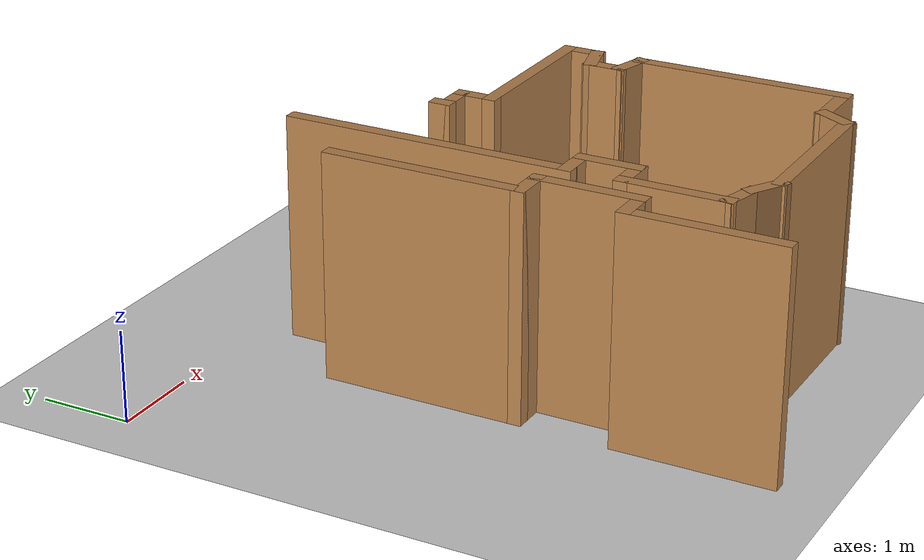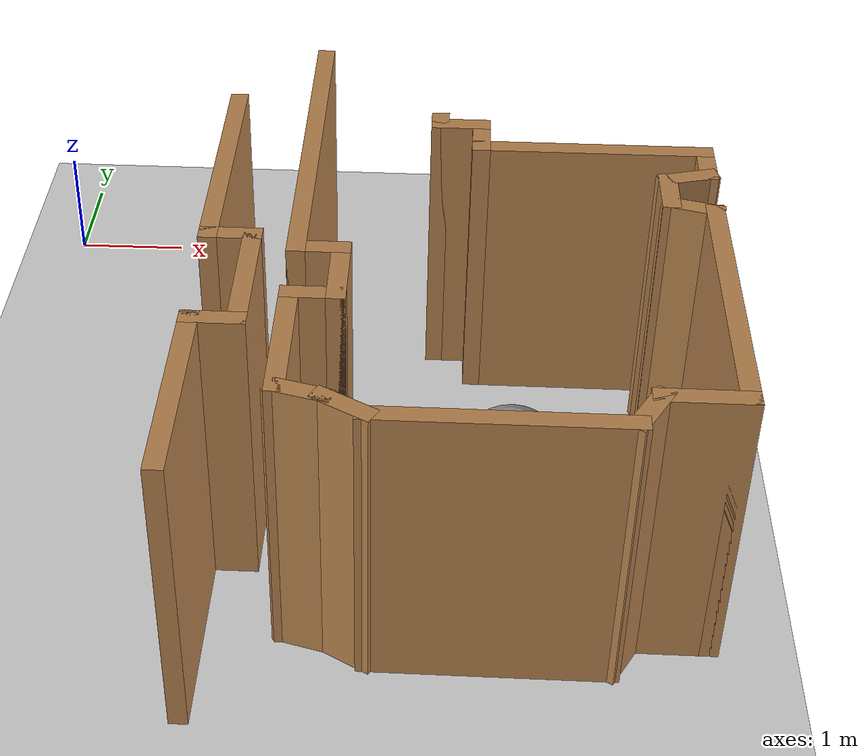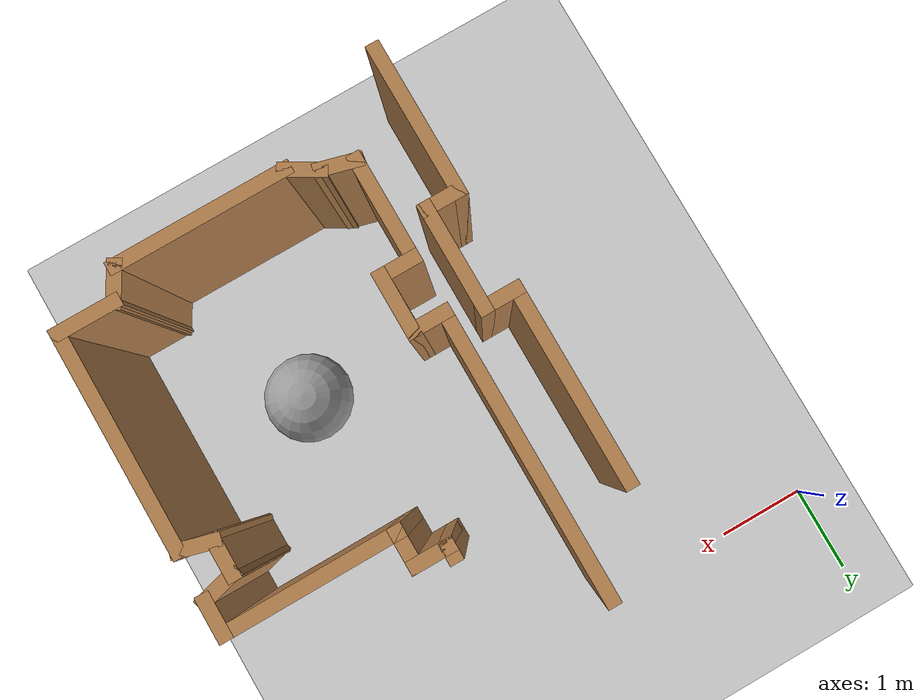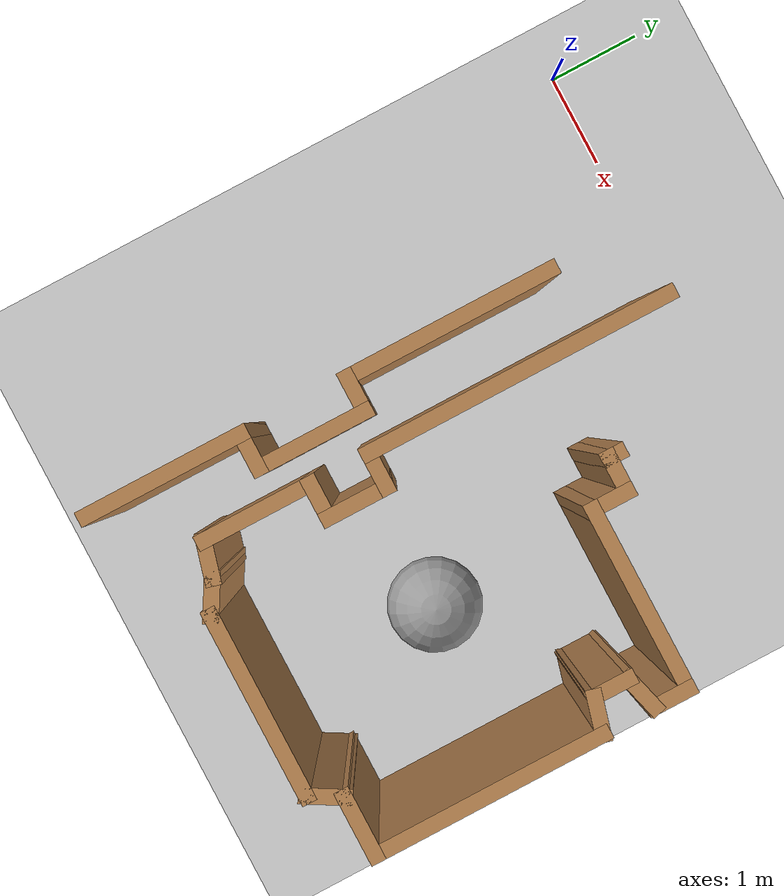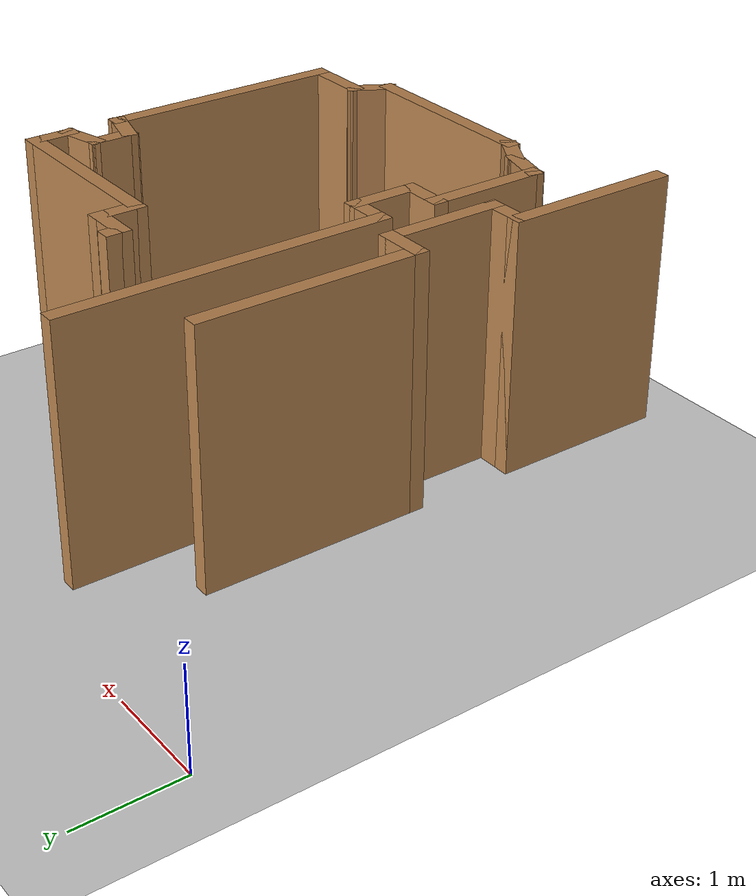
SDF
<sdf version="1.6">
 <world name="default">
  <model name="ground_plane">
   <static>1</static>
   <link name="link">
    <collision name="collision">
     <geometry><plane><normal>0 0 1</normal><size>100 100</size></plane></geometry>
     <surface><friction><ode><mu>100</mu><mu2>50</mu2></ode></friction></surface>
    </collision>
    <visual name="visual">
     <cast_shadows>0</cast_shadows>
     <geometry><plane><normal>0 0 1</normal><size>100 100</size></plane></geometry>
     <material>
      <script><uri>file://media/materials/scripts/gazebo.material</uri><name>Gazebo/Grey</name></script>
     </material>
    </visual>
   </link>
  </model>
  <model name="map_30">
   <link name="Wall_100">
    <pose>3.86655 -1.14749 0 0 -0 1.5708</pose>
    <visual name="Wall_100_Visual">
     <pose>0 0 1.25 0 -0 0</pose>
     <geometry><box><size>0.25 0.15 2.5</size></box></geometry>
     <material>
      <script><uri>file://media/materials/scripts/gazebo.material</uri><name>Gazebo/Wood</name></script>
      <ambient>1 1 1 1</ambient>
      <shader type="pixel"/>
     </material>
     <meta><layer>0</layer></meta>
    </visual>
    <collision name="Wall_100_Collision">
     <pose>0 0 1.25 0 -0 0</pose>
     <geometry><box><size>0.25 0.15 2.5</size></box></geometry>
     <surface>
      <friction>
       <ode><mu>1</mu><mu2>1</mu2><fdir1>0 0 0</fdir1><slip1>0</slip1><slip2>0</slip2></ode>
       <torsional>
        <coefficient>1</coefficient>
        <patch_radius>0</patch_radius>
        <surface_radius>0</surface_radius>
        <use_patch_radius>1</use_patch_radius>
        <ode><slip>0</slip></ode>
       </torsional>
      </friction>
      <bounce><restitution_coefficient>0</restitution_coefficient><threshold>1e+06</threshold></bounce>
      <contact>
       <collide_without_contact>0</collide_without_contact>
       <collide_without_contact_bitmask>1</collide_without_contact_bitmask>
       <collide_bitmask>1</collide_bitmask>
       <ode>
        <soft_cfm>0</soft_cfm>
        <soft_erp>0.2</soft_erp>
        <kp>1e+13</kp>
        <kd>1</kd>
        <max_vel>0.01</max_vel>
        <min_depth>0</min_depth>
       </ode>
       <bullet>
        <split_impulse>1</split_impulse>
        <split_impulse_penetration_threshold>-0.01</split_impulse_penetration_threshold>
        <soft_cfm>0</soft_cfm>
        <soft_erp>0.2</soft_erp>
        <kp>1e+13</kp>
        <kd>1</kd>
       </bullet>
      </contact>
     </surface>
    </collision>
   </link>
   <link name="Wall_68">
    <pose>2.10037 -4.86618 0 0 -0 1.5708</pose>
    <visual name="Wall_68_Visual">
     <pose>0 0 1.25 0 -0 0</pose>
     <geometry><box><size>1.75 0.15 2.5</size></box></geometry>
     <material>
      <script><uri>file://media/materials/scripts/gazebo.material</uri><name>Gazebo/Wood</name></script>
      <ambient>1 1 1 1</ambient>
      <shader type="pixel"/>
     </material>
     <meta><layer>0</layer></meta>
    </visual>
    <collision name="Wall_68_Collision">
     <pose>0 0 1.25 0 -0 0</pose>
     <geometry><box><size>1.75 0.15 2.5</size></box></geometry>
     <surface>
      <friction>
       <ode><mu>1</mu><mu2>1</mu2><fdir1>0 0 0</fdir1><slip1>0</slip1><slip2>0</slip2></ode>
       <torsional>
        <coefficient>1</coefficient>
        <patch_radius>0</patch_radius>
        <surface_radius>0</surface_radius>
        <use_patch_radius>1</use_patch_radius>
        <ode><slip>0</slip></ode>
       </torsional>
      </friction>
      <bounce><restitution_coefficient>0</restitution_coefficient><threshold>1e+06</threshold></bounce>
      <contact>
       <collide_without_contact>0</collide_without_contact>
       <collide_without_contact_bitmask>1</collide_without_contact_bitmask>
       <collide_bitmask>1</collide_bitmask>
       <ode>
        <soft_cfm>0</soft_cfm>
        <soft_erp>0.2</soft_erp>
        <kp>1e+13</kp>
        <kd>1</kd>
        <max_vel>0.01</max_vel>
        <min_depth>0</min_depth>
       </ode>
       <bullet>
        <split_impulse>1</split_impulse>
        <split_impulse_penetration_threshold>-0.01</split_impulse_penetration_threshold>
        <soft_cfm>0</soft_cfm>
        <soft_erp>0.2</soft_erp>
        <kp>1e+13</kp>
        <kd>1</kd>
       </bullet>
      </contact>
     </surface>
    </collision>
   </link>
   <link name="Wall_69">
    <pose>2.27537 -4.06618 0 0 -0 0</pose>
    <visual name="Wall_69_Visual">
     <pose>0 0 1.25 0 -0 0</pose>
     <geometry><box><size>0.5 0.15 2.5</size></box></geometry>
     <material>
      <script><uri>file://media/materials/scripts/gazebo.material</uri><name>Gazebo/Wood</name></script>
      <ambient>1 1 1 1</ambient>
      <shader type="pixel"/>
     </material>
     <meta><layer>0</layer></meta>
    </visual>
    <collision name="Wall_69_Collision">
     <pose>0 0 1.25 0 -0 0</pose>
     <geometry><box><size>0.5 0.15 2.5</size></box></geometry>
     <surface>
      <friction>
       <ode><mu>1</mu><mu2>1</mu2><fdir1>0 0 0</fdir1><slip1>0</slip1><slip2>0</slip2></ode>
       <torsional>
        <coefficient>1</coefficient>
        <patch_radius>0</patch_radius>
        <surface_radius>0</surface_radius>
        <use_patch_radius>1</use_patch_radius>
        <ode><slip>0</slip></ode>
       </torsional>
      </friction>
      <bounce><restitution_coefficient>0</restitution_coefficient><threshold>1e+06</threshold></bounce>
      <contact>
       <collide_without_contact>0</collide_without_contact>
       <collide_without_contact_bitmask>1</collide_without_contact_bitmask>
       <collide_bitmask>1</collide_bitmask>
       <ode>
        <soft_cfm>0</soft_cfm>
        <soft_erp>0.2</soft_erp>
        <kp>1e+13</kp>
        <kd>1</kd>
        <max_vel>0.01</max_vel>
        <min_depth>0</min_depth>
       </ode>
       <bullet>
        <split_impulse>1</split_impulse>
        <split_impulse_penetration_threshold>-0.01</split_impulse_penetration_threshold>
        <soft_cfm>0</soft_cfm>
        <soft_erp>0.2</soft_erp>
        <kp>1e+13</kp>
        <kd>1</kd>
       </bullet>
      </contact>
     </surface>
    </collision>
   </link>
   <link name="Wall_70">
    <pose>2.45037 -3.51618 0 0 -0 1.5708</pose>
    <visual name="Wall_70_Visual">
     <pose>0 0 1.25 0 -0 0</pose>
     <geometry><box><size>1.25 0.15 2.5</size></box></geometry>
     <material>
      <script><uri>file://media/materials/scripts/gazebo.material</uri><name>Gazebo/Wood</name></script>
      <ambient>1 1 1 1</ambient>
      <shader type="pixel"/>
     </material>
     <meta><layer>0</layer></meta>
    </visual>
    <collision name="Wall_70_Collision">
     <pose>0 0 1.25 0 -0 0</pose>
     <geometry><box><size>1.25 0.15 2.5</size></box></geometry>
     <surface>
      <friction>
       <ode><mu>1</mu><mu2>1</mu2><fdir1>0 0 0</fdir1><slip1>0</slip1><slip2>0</slip2></ode>
       <torsional>
        <coefficient>1</coefficient>
        <patch_radius>0</patch_radius>
        <surface_radius>0</surface_radius>
        <use_patch_radius>1</use_patch_radius>
        <ode><slip>0</slip></ode>
       </torsional>
      </friction>
      <bounce><restitution_coefficient>0</restitution_coefficient><threshold>1e+06</threshold></bounce>
      <contact>
       <collide_without_contact>0</collide_without_contact>
       <collide_without_contact_bitmask>1</collide_without_contact_bitmask>
       <collide_bitmask>1</collide_bitmask>
       <ode>
        <soft_cfm>0</soft_cfm>
        <soft_erp>0.2</soft_erp>
        <kp>1e+13</kp>
        <kd>1</kd>
        <max_vel>0.01</max_vel>
        <min_depth>0</min_depth>
       </ode>
       <bullet>
        <split_impulse>1</split_impulse>
        <split_impulse_penetration_threshold>-0.01</split_impulse_penetration_threshold>
        <soft_cfm>0</soft_cfm>
        <soft_erp>0.2</soft_erp>
        <kp>1e+13</kp>
        <kd>1</kd>
       </bullet>
      </contact>
     </surface>
    </collision>
   </link>
   <link name="Wall_71">
    <pose>2.27537 -2.96618 0 0 -0 3.14159</pose>
    <visual name="Wall_71_Visual">
     <pose>0 0 1.25 0 -0 0</pose>
     <geometry><box><size>0.5 0.15 2.5</size></box></geometry>
     <material>
      <script><uri>file://media/materials/scripts/gazebo.material</uri><name>Gazebo/Wood</name></script>
      <ambient>1 1 1 1</ambient>
      <shader type="pixel"/>
     </material>
     <meta><layer>0</layer></meta>
    </visual>
    <collision name="Wall_71_Collision">
     <pose>0 0 1.25 0 -0 0</pose>
     <geometry><box><size>0.5 0.15 2.5</size></box></geometry>
     <surface>
      <friction>
       <ode><mu>1</mu><mu2>1</mu2><fdir1>0 0 0</fdir1><slip1>0</slip1><slip2>0</slip2></ode>
       <torsional>
        <coefficient>1</coefficient>
        <patch_radius>0</patch_radius>
        <surface_radius>0</surface_radius>
        <use_patch_radius>1</use_patch_radius>
        <ode><slip>0</slip></ode>
       </torsional>
      </friction>
      <bounce><restitution_coefficient>0</restitution_coefficient><threshold>1e+06</threshold></bounce>
      <contact>
       <collide_without_contact>0</collide_without_contact>
       <collide_without_contact_bitmask>1</collide_without_contact_bitmask>
       <collide_bitmask>1</collide_bitmask>
       <ode>
        <soft_cfm>0</soft_cfm>
        <soft_erp>0.2</soft_erp>
        <kp>1e+13</kp>
        <kd>1</kd>
        <max_vel>0.01</max_vel>
        <min_depth>0</min_depth>
       </ode>
       <bullet>
        <split_impulse>1</split_impulse>
        <split_impulse_penetration_threshold>-0.01</split_impulse_penetration_threshold>
        <soft_cfm>0</soft_cfm>
        <soft_erp>0.2</soft_erp>
        <kp>1e+13</kp>
        <kd>1</kd>
       </bullet>
      </contact>
     </surface>
    </collision>
   </link>
   <link name="Wall_72">
    <pose>2.10037 -1.91618 0 0 -0 1.5708</pose>
    <visual name="Wall_72_Visual">
     <pose>0 0 1.25 0 -0 0</pose>
     <geometry><box><size>2.25 0.15 2.5</size></box></geometry>
     <material>
      <script><uri>file://media/materials/scripts/gazebo.material</uri><name>Gazebo/Wood</name></script>
      <ambient>1 1 1 1</ambient>
      <shader type="pixel"/>
     </material>
     <meta><layer>0</layer></meta>
    </visual>
    <collision name="Wall_72_Collision">
     <pose>0 0 1.25 0 -0 0</pose>
     <geometry><box><size>2.25 0.15 2.5</size></box></geometry>
     <surface>
      <friction>
       <ode><mu>1</mu><mu2>1</mu2><fdir1>0 0 0</fdir1><slip1>0</slip1><slip2>0</slip2></ode>
       <torsional>
        <coefficient>1</coefficient>
        <patch_radius>0</patch_radius>
        <surface_radius>0</surface_radius>
        <use_patch_radius>1</use_patch_radius>
        <ode><slip>0</slip></ode>
       </torsional>
      </friction>
      <bounce><restitution_coefficient>0</restitution_coefficient><threshold>1e+06</threshold></bounce>
      <contact>
       <collide_without_contact>0</collide_without_contact>
       <collide_without_contact_bitmask>1</collide_without_contact_bitmask>
       <collide_bitmask>1</collide_bitmask>
       <ode>
        <soft_cfm>0</soft_cfm>
        <soft_erp>0.2</soft_erp>
        <kp>1e+13</kp>
        <kd>1</kd>
        <max_vel>0.01</max_vel>
        <min_depth>0</min_depth>
       </ode>
       <bullet>
        <split_impulse>1</split_impulse>
        <split_impulse_penetration_threshold>-0.01</split_impulse_penetration_threshold>
        <soft_cfm>0</soft_cfm>
        <soft_erp>0.2</soft_erp>
        <kp>1e+13</kp>
        <kd>1</kd>
       </bullet>
      </contact>
     </surface>
    </collision>
   </link>
   <link name="Wall_76">
    <pose>2.80037 -1.56618 0 0 0 -1.5708</pose>
    <visual name="Wall_76_Visual">
     <pose>0 0 1.25 0 -0 0</pose>
     <geometry><box><size>3.25 0.15 2.5</size></box></geometry>
     <material>
      <script><uri>file://media/materials/scripts/gazebo.material</uri><name>Gazebo/Wood</name></script>
      <ambient>1 1 1 1</ambient>
      <shader type="pixel"/>
     </material>
     <meta><layer>0</layer></meta>
    </visual>
    <collision name="Wall_76_Collision">
     <pose>0 0 1.25 0 -0 0</pose>
     <geometry><box><size>3.25 0.15 2.5</size></box></geometry>
     <surface>
      <friction>
       <ode><mu>1</mu><mu2>1</mu2><fdir1>0 0 0</fdir1><slip1>0</slip1><slip2>0</slip2></ode>
       <torsional>
        <coefficient>1</coefficient>
        <patch_radius>0</patch_radius>
        <surface_radius>0</surface_radius>
        <use_patch_radius>1</use_patch_radius>
        <ode><slip>0</slip></ode>
       </torsional>
      </friction>
      <bounce><restitution_coefficient>0</restitution_coefficient><threshold>1e+06</threshold></bounce>
      <contact>
       <collide_without_contact>0</collide_without_contact>
       <collide_without_contact_bitmask>1</collide_without_contact_bitmask>
       <collide_bitmask>1</collide_bitmask>
       <ode>
        <soft_cfm>0</soft_cfm>
        <soft_erp>0.2</soft_erp>
        <kp>1e+13</kp>
        <kd>1</kd>
        <max_vel>0.01</max_vel>
        <min_depth>0</min_depth>
       </ode>
       <bullet>
        <split_impulse>1</split_impulse>
        <split_impulse_penetration_threshold>-0.01</split_impulse_penetration_threshold>
        <soft_cfm>0</soft_cfm>
        <soft_erp>0.2</soft_erp>
        <kp>1e+13</kp>
        <kd>1</kd>
       </bullet>
      </contact>
     </surface>
    </collision>
   </link>
   <link name="Wall_77">
    <pose>2.97537 -3.11618 0 0 -0 0</pose>
    <visual name="Wall_77_Visual">
     <pose>0 0 1.25 0 -0 0</pose>
     <geometry><box><size>0.5 0.15 2.5</size></box></geometry>
     <material>
      <script><uri>file://media/materials/scripts/gazebo.material</uri><name>Gazebo/Wood</name></script>
      <ambient>1 1 1 1</ambient>
      <shader type="pixel"/>
     </material>
     <meta><layer>0</layer></meta>
    </visual>
    <collision name="Wall_77_Collision">
     <pose>0 0 1.25 0 -0 0</pose>
     <geometry><box><size>0.5 0.15 2.5</size></box></geometry>
     <surface>
      <friction>
       <ode><mu>1</mu><mu2>1</mu2><fdir1>0 0 0</fdir1><slip1>0</slip1><slip2>0</slip2></ode>
       <torsional>
        <coefficient>1</coefficient>
        <patch_radius>0</patch_radius>
        <surface_radius>0</surface_radius>
        <use_patch_radius>1</use_patch_radius>
        <ode><slip>0</slip></ode>
       </torsional>
      </friction>
      <bounce><restitution_coefficient>0</restitution_coefficient><threshold>1e+06</threshold></bounce>
      <contact>
       <collide_without_contact>0</collide_without_contact>
       <collide_without_contact_bitmask>1</collide_without_contact_bitmask>
       <collide_bitmask>1</collide_bitmask>
       <ode>
        <soft_cfm>0</soft_cfm>
        <soft_erp>0.2</soft_erp>
        <kp>1e+13</kp>
        <kd>1</kd>
        <max_vel>0.01</max_vel>
        <min_depth>0</min_depth>
       </ode>
       <bullet>
        <split_impulse>1</split_impulse>
        <split_impulse_penetration_threshold>-0.01</split_impulse_penetration_threshold>
        <soft_cfm>0</soft_cfm>
        <soft_erp>0.2</soft_erp>
        <kp>1e+13</kp>
        <kd>1</kd>
       </bullet>
      </contact>
     </surface>
    </collision>
   </link>
   <link name="Wall_84">
    <pose>3.15037 -3.41618 0 0 0 -1.5708</pose>
    <visual name="Wall_84_Visual">
     <pose>0 0 1.25 0 -0 0</pose>
     <geometry><box><size>0.75 0.15 2.5</size></box></geometry>
     <material>
      <script><uri>file://media/materials/scripts/gazebo.material</uri><name>Gazebo/Wood</name></script>
      <ambient>1 1 1 1</ambient>
      <shader type="pixel"/>
     </material>
     <meta><layer>0</layer></meta>
    </visual>
    <collision name="Wall_84_Collision">
     <pose>0 0 1.25 0 -0 0</pose>
     <geometry><box><size>0.75 0.15 2.5</size></box></geometry>
     <surface>
      <friction>
       <ode><mu>1</mu><mu2>1</mu2><fdir1>0 0 0</fdir1><slip1>0</slip1><slip2>0</slip2></ode>
       <torsional>
        <coefficient>1</coefficient>
        <patch_radius>0</patch_radius>
        <surface_radius>0</surface_radius>
        <use_patch_radius>1</use_patch_radius>
        <ode><slip>0</slip></ode>
       </torsional>
      </friction>
      <bounce><restitution_coefficient>0</restitution_coefficient><threshold>1e+06</threshold></bounce>
      <contact>
       <collide_without_contact>0</collide_without_contact>
       <collide_without_contact_bitmask>1</collide_without_contact_bitmask>
       <collide_bitmask>1</collide_bitmask>
       <ode>
        <soft_cfm>0</soft_cfm>
        <soft_erp>0.2</soft_erp>
        <kp>1e+13</kp>
        <kd>1</kd>
        <max_vel>0.01</max_vel>
        <min_depth>0</min_depth>
       </ode>
       <bullet>
        <split_impulse>1</split_impulse>
        <split_impulse_penetration_threshold>-0.01</split_impulse_penetration_threshold>
        <soft_cfm>0</soft_cfm>
        <soft_erp>0.2</soft_erp>
        <kp>1e+13</kp>
        <kd>1</kd>
       </bullet>
      </contact>
     </surface>
    </collision>
   </link>
   <link name="Wall_85">
    <pose>2.97537 -3.71618 0 0 -0 3.14159</pose>
    <visual name="Wall_85_Visual">
     <pose>0 0 1.25 0 -0 0</pose>
     <geometry><box><size>0.5 0.15 2.5</size></box></geometry>
     <material>
      <script><uri>file://media/materials/scripts/gazebo.material</uri><name>Gazebo/Wood</name></script>
      <ambient>1 1 1 1</ambient>
      <shader type="pixel"/>
     </material>
     <meta><layer>0</layer></meta>
    </visual>
    <collision name="Wall_85_Collision">
     <pose>0 0 1.25 0 -0 0</pose>
     <geometry><box><size>0.5 0.15 2.5</size></box></geometry>
     <surface>
      <friction>
       <ode><mu>1</mu><mu2>1</mu2><fdir1>0 0 0</fdir1><slip1>0</slip1><slip2>0</slip2></ode>
       <torsional>
        <coefficient>1</coefficient>
        <patch_radius>0</patch_radius>
        <surface_radius>0</surface_radius>
        <use_patch_radius>1</use_patch_radius>
        <ode><slip>0</slip></ode>
       </torsional>
      </friction>
      <bounce><restitution_coefficient>0</restitution_coefficient><threshold>1e+06</threshold></bounce>
      <contact>
       <collide_without_contact>0</collide_without_contact>
       <collide_without_contact_bitmask>1</collide_without_contact_bitmask>
       <collide_bitmask>1</collide_bitmask>
       <ode>
        <soft_cfm>0</soft_cfm>
        <soft_erp>0.2</soft_erp>
        <kp>1e+13</kp>
        <kd>1</kd>
        <max_vel>0.01</max_vel>
        <min_depth>0</min_depth>
       </ode>
       <bullet>
        <split_impulse>1</split_impulse>
        <split_impulse_penetration_threshold>-0.01</split_impulse_penetration_threshold>
        <soft_cfm>0</soft_cfm>
        <soft_erp>0.2</soft_erp>
        <kp>1e+13</kp>
        <kd>1</kd>
       </bullet>
      </contact>
     </surface>
    </collision>
   </link>
   <link name="Wall_86">
    <pose>2.80037 -4.26618 0 0 0 -1.5708</pose>
    <visual name="Wall_86_Visual">
     <pose>0 0 1.25 0 -0 0</pose>
     <geometry><box><size>1.25 0.15 2.5</size></box></geometry>
     <material>
      <script><uri>file://media/materials/scripts/gazebo.material</uri><name>Gazebo/Wood</name></script>
      <ambient>1 1 1 1</ambient>
      <shader type="pixel"/>
     </material>
     <meta><layer>0</layer></meta>
    </visual>
    <collision name="Wall_86_Collision">
     <pose>0 0 1.25 0 -0 0</pose>
     <geometry><box><size>1.25 0.15 2.5</size></box></geometry>
     <surface>
      <friction>
       <ode><mu>1</mu><mu2>1</mu2><fdir1>0 0 0</fdir1><slip1>0</slip1><slip2>0</slip2></ode>
       <torsional>
        <coefficient>1</coefficient>
        <patch_radius>0</patch_radius>
        <surface_radius>0</surface_radius>
        <use_patch_radius>1</use_patch_radius>
        <ode><slip>0</slip></ode>
       </torsional>
      </friction>
      <bounce><restitution_coefficient>0</restitution_coefficient><threshold>1e+06</threshold></bounce>
      <contact>
       <collide_without_contact>0</collide_without_contact>
       <collide_without_contact_bitmask>1</collide_without_contact_bitmask>
       <collide_bitmask>1</collide_bitmask>
       <ode>
        <soft_cfm>0</soft_cfm>
        <soft_erp>0.2</soft_erp>
        <kp>1e+13</kp>
        <kd>1</kd>
        <max_vel>0.01</max_vel>
        <min_depth>0</min_depth>
       </ode>
       <bullet>
        <split_impulse>1</split_impulse>
        <split_impulse_penetration_threshold>-0.01</split_impulse_penetration_threshold>
        <soft_cfm>0</soft_cfm>
        <soft_erp>0.2</soft_erp>
        <kp>1e+13</kp>
        <kd>1</kd>
       </bullet>
      </contact>
     </surface>
    </collision>
   </link>
   <link name="Wall_87">
    <pose>2.9694 -4.86148 0 0 0 -0.261799</pose>
    <visual name="Wall_87_Visual">
     <pose>0 0 1.25 0 -0 0</pose>
     <geometry><box><size>0.5 0.15 2.5</size></box></geometry>
     <material>
      <script><uri>file://media/materials/scripts/gazebo.material</uri><name>Gazebo/Wood</name></script>
      <ambient>1 1 1 1</ambient>
      <shader type="pixel"/>
     </material>
     <meta><layer>0</layer></meta>
    </visual>
    <collision name="Wall_87_Collision">
     <pose>0 0 1.25 0 -0 0</pose>
     <geometry><box><size>0.5 0.15 2.5</size></box></geometry>
     <surface>
      <friction>
       <ode><mu>1</mu><mu2>1</mu2><fdir1>0 0 0</fdir1><slip1>0</slip1><slip2>0</slip2></ode>
       <torsional>
        <coefficient>1</coefficient>
        <patch_radius>0</patch_radius>
        <surface_radius>0</surface_radius>
        <use_patch_radius>1</use_patch_radius>
        <ode><slip>0</slip></ode>
       </torsional>
      </friction>
      <bounce><restitution_coefficient>0</restitution_coefficient><threshold>1e+06</threshold></bounce>
      <contact>
       <collide_without_contact>0</collide_without_contact>
       <collide_without_contact_bitmask>1</collide_without_contact_bitmask>
       <collide_bitmask>1</collide_bitmask>
       <ode>
        <soft_cfm>0</soft_cfm>
        <soft_erp>0.2</soft_erp>
        <kp>1e+13</kp>
        <kd>1</kd>
        <max_vel>0.01</max_vel>
        <min_depth>0</min_depth>
       </ode>
       <bullet>
        <split_impulse>1</split_impulse>
        <split_impulse_penetration_threshold>-0.01</split_impulse_penetration_threshold>
        <soft_cfm>0</soft_cfm>
        <soft_erp>0.2</soft_erp>
        <kp>1e+13</kp>
        <kd>1</kd>
       </bullet>
      </contact>
     </surface>
    </collision>
   </link>
   <link name="Wall_88">
    <pose>3.28999 -4.99427 0 0 0 -0.523599</pose>
    <visual name="Wall_88_Visual">
     <pose>0 0 1.25 0 -0 0</pose>
     <geometry><box><size>0.5 0.15 2.5</size></box></geometry>
     <material>
      <script><uri>file://media/materials/scripts/gazebo.material</uri><name>Gazebo/Wood</name></script>
      <ambient>1 1 1 1</ambient>
      <shader type="pixel"/>
     </material>
     <meta><layer>0</layer></meta>
    </visual>
    <collision name="Wall_88_Collision">
     <pose>0 0 1.25 0 -0 0</pose>
     <geometry><box><size>0.5 0.15 2.5</size></box></geometry>
     <surface>
      <friction>
       <ode><mu>1</mu><mu2>1</mu2><fdir1>0 0 0</fdir1><slip1>0</slip1><slip2>0</slip2></ode>
       <torsional>
        <coefficient>1</coefficient>
        <patch_radius>0</patch_radius>
        <surface_radius>0</surface_radius>
        <use_patch_radius>1</use_patch_radius>
        <ode><slip>0</slip></ode>
       </torsional>
      </friction>
      <bounce><restitution_coefficient>0</restitution_coefficient><threshold>1e+06</threshold></bounce>
      <contact>
       <collide_without_contact>0</collide_without_contact>
       <collide_without_contact_bitmask>1</collide_without_contact_bitmask>
       <collide_bitmask>1</collide_bitmask>
       <ode>
        <soft_cfm>0</soft_cfm>
        <soft_erp>0.2</soft_erp>
        <kp>1e+13</kp>
        <kd>1</kd>
        <max_vel>0.01</max_vel>
        <min_depth>0</min_depth>
       </ode>
       <bullet>
        <split_impulse>1</split_impulse>
        <split_impulse_penetration_threshold>-0.01</split_impulse_penetration_threshold>
        <soft_cfm>0</soft_cfm>
        <soft_erp>0.2</soft_erp>
        <kp>1e+13</kp>
        <kd>1</kd>
       </bullet>
      </contact>
     </surface>
    </collision>
   </link>
   <link name="Wall_89">
    <pose>4.36655 -5.08177 0 0 -0 0</pose>
    <visual name="Wall_89_Visual">
     <pose>0 0 1.25 0 -0 0</pose>
     <geometry><box><size>2 0.15 2.5</size></box></geometry>
     <material>
      <script><uri>file://media/materials/scripts/gazebo.material</uri><name>Gazebo/Wood</name></script>
      <ambient>1 1 1 1</ambient>
      <shader type="pixel"/>
     </material>
     <meta><layer>0</layer></meta>
    </visual>
    <collision name="Wall_89_Collision">
     <pose>0 0 1.25 0 -0 0</pose>
     <geometry><box><size>2 0.15 2.5</size></box></geometry>
     <surface>
      <friction>
       <ode><mu>1</mu><mu2>1</mu2><fdir1>0 0 0</fdir1><slip1>0</slip1><slip2>0</slip2></ode>
       <torsional>
        <coefficient>1</coefficient>
        <patch_radius>0</patch_radius>
        <surface_radius>0</surface_radius>
        <use_patch_radius>1</use_patch_radius>
        <ode><slip>0</slip></ode>
       </torsional>
      </friction>
      <bounce><restitution_coefficient>0</restitution_coefficient><threshold>1e+06</threshold></bounce>
      <contact>
       <collide_without_contact>0</collide_without_contact>
       <collide_without_contact_bitmask>1</collide_without_contact_bitmask>
       <collide_bitmask>1</collide_bitmask>
       <ode>
        <soft_cfm>0</soft_cfm>
        <soft_erp>0.2</soft_erp>
        <kp>1e+13</kp>
        <kd>1</kd>
        <max_vel>0.01</max_vel>
        <min_depth>0</min_depth>
       </ode>
       <bullet>
        <split_impulse>1</split_impulse>
        <split_impulse_penetration_threshold>-0.01</split_impulse_penetration_threshold>
        <soft_cfm>0</soft_cfm>
        <soft_erp>0.2</soft_erp>
        <kp>1e+13</kp>
        <kd>1</kd>
       </bullet>
      </contact>
     </surface>
    </collision>
   </link>
   <link name="Wall_90">
    <pose>5.37905 -4.93021 0 0 -0 1.0472</pose>
    <visual name="Wall_90_Visual">
     <pose>0 0 1.25 0 -0 0</pose>
     <geometry><box><size>0.5 0.15 2.5</size></box></geometry>
     <material>
      <script><uri>file://media/materials/scripts/gazebo.material</uri><name>Gazebo/Wood</name></script>
      <ambient>1 1 1 1</ambient>
      <shader type="pixel"/>
     </material>
     <meta><layer>0</layer></meta>
    </visual>
    <collision name="Wall_90_Collision">
     <pose>0 0 1.25 0 -0 0</pose>
     <geometry><box><size>0.5 0.15 2.5</size></box></geometry>
     <surface>
      <friction>
       <ode><mu>1</mu><mu2>1</mu2><fdir1>0 0 0</fdir1><slip1>0</slip1><slip2>0</slip2></ode>
       <torsional>
        <coefficient>1</coefficient>
        <patch_radius>0</patch_radius>
        <surface_radius>0</surface_radius>
        <use_patch_radius>1</use_patch_radius>
        <ode><slip>0</slip></ode>
       </torsional>
      </friction>
      <bounce><restitution_coefficient>0</restitution_coefficient><threshold>1e+06</threshold></bounce>
      <contact>
       <collide_without_contact>0</collide_without_contact>
       <collide_without_contact_bitmask>1</collide_without_contact_bitmask>
       <collide_bitmask>1</collide_bitmask>
       <ode>
        <soft_cfm>0</soft_cfm>
        <soft_erp>0.2</soft_erp>
        <kp>1e+13</kp>
        <kd>1</kd>
        <max_vel>0.01</max_vel>
        <min_depth>0</min_depth>
       </ode>
       <bullet>
        <split_impulse>1</split_impulse>
        <split_impulse_penetration_threshold>-0.01</split_impulse_penetration_threshold>
        <soft_cfm>0</soft_cfm>
        <soft_erp>0.2</soft_erp>
        <kp>1e+13</kp>
        <kd>1</kd>
       </bullet>
      </contact>
     </surface>
    </collision>
   </link>
   <link name="Wall_91">
    <pose>5.76655 -4.77866 0 0 -0 0</pose>
    <visual name="Wall_91_Visual">
     <pose>0 0 1.25 0 -0 0</pose>
     <geometry><box><size>0.75 0.15 2.5</size></box></geometry>
     <material>
      <script><uri>file://media/materials/scripts/gazebo.material</uri><name>Gazebo/Wood</name></script>
      <ambient>1 1 1 1</ambient>
      <shader type="pixel"/>
     </material>
     <meta><layer>0</layer></meta>
    </visual>
    <collision name="Wall_91_Collision">
     <pose>0 0 1.25 0 -0 0</pose>
     <geometry><box><size>0.75 0.15 2.5</size></box></geometry>
     <surface>
      <friction>
       <ode><mu>1</mu><mu2>1</mu2><fdir1>0 0 0</fdir1><slip1>0</slip1><slip2>0</slip2></ode>
       <torsional>
        <coefficient>1</coefficient>
        <patch_radius>0</patch_radius>
        <surface_radius>0</surface_radius>
        <use_patch_radius>1</use_patch_radius>
        <ode><slip>0</slip></ode>
       </torsional>
      </friction>
      <bounce><restitution_coefficient>0</restitution_coefficient><threshold>1e+06</threshold></bounce>
      <contact>
       <collide_without_contact>0</collide_without_contact>
       <collide_without_contact_bitmask>1</collide_without_contact_bitmask>
       <collide_bitmask>1</collide_bitmask>
       <ode>
        <soft_cfm>0</soft_cfm>
        <soft_erp>0.2</soft_erp>
        <kp>1e+13</kp>
        <kd>1</kd>
        <max_vel>0.01</max_vel>
        <min_depth>0</min_depth>
       </ode>
       <bullet>
        <split_impulse>1</split_impulse>
        <split_impulse_penetration_threshold>-0.01</split_impulse_penetration_threshold>
        <soft_cfm>0</soft_cfm>
        <soft_erp>0.2</soft_erp>
        <kp>1e+13</kp>
        <kd>1</kd>
       </bullet>
      </contact>
     </surface>
    </collision>
   </link>
   <link name="Wall_92">
    <pose>6.06655 -3.60366 0 0 -0 1.5708</pose>
    <visual name="Wall_92_Visual">
     <pose>0 0 1.25 0 -0 0</pose>
     <geometry><box><size>2.5 0.15 2.5</size></box></geometry>
     <material>
      <script><uri>file://media/materials/scripts/gazebo.material</uri><name>Gazebo/Wood</name></script>
      <ambient>1 1 1 1</ambient>
      <shader type="pixel"/>
     </material>
     <meta><layer>0</layer></meta>
    </visual>
    <collision name="Wall_92_Collision">
     <pose>0 0 1.25 0 -0 0</pose>
     <geometry><box><size>2.5 0.15 2.5</size></box></geometry>
     <surface>
      <friction>
       <ode><mu>1</mu><mu2>1</mu2><fdir1>0 0 0</fdir1><slip1>0</slip1><slip2>0</slip2></ode>
       <torsional>
        <coefficient>1</coefficient>
        <patch_radius>0</patch_radius>
        <surface_radius>0</surface_radius>
        <use_patch_radius>1</use_patch_radius>
        <ode><slip>0</slip></ode>
       </torsional>
      </friction>
      <bounce><restitution_coefficient>0</restitution_coefficient><threshold>1e+06</threshold></bounce>
      <contact>
       <collide_without_contact>0</collide_without_contact>
       <collide_without_contact_bitmask>1</collide_without_contact_bitmask>
       <collide_bitmask>1</collide_bitmask>
       <ode>
        <soft_cfm>0</soft_cfm>
        <soft_erp>0.2</soft_erp>
        <kp>1e+13</kp>
        <kd>1</kd>
        <max_vel>0.01</max_vel>
        <min_depth>0</min_depth>
       </ode>
       <bullet>
        <split_impulse>1</split_impulse>
        <split_impulse_penetration_threshold>-0.01</split_impulse_penetration_threshold>
        <soft_cfm>0</soft_cfm>
        <soft_erp>0.2</soft_erp>
        <kp>1e+13</kp>
        <kd>1</kd>
       </bullet>
      </contact>
     </surface>
    </collision>
   </link>
   <link name="Wall_93">
    <pose>5.89751 -2.38337 0 0 -0 2.87979</pose>
    <visual name="Wall_93_Visual">
     <pose>0 0 1.25 0 -0 0</pose>
     <geometry><box><size>0.5 0.15 2.5</size></box></geometry>
     <material>
      <script><uri>file://media/materials/scripts/gazebo.material</uri><name>Gazebo/Wood</name></script>
      <ambient>1 1 1 1</ambient>
      <shader type="pixel"/>
     </material>
     <meta><layer>0</layer></meta>
    </visual>
    <collision name="Wall_93_Collision">
     <pose>0 0 1.25 0 -0 0</pose>
     <geometry><box><size>0.5 0.15 2.5</size></box></geometry>
     <surface>
      <friction>
       <ode><mu>1</mu><mu2>1</mu2><fdir1>0 0 0</fdir1><slip1>0</slip1><slip2>0</slip2></ode>
       <torsional>
        <coefficient>1</coefficient>
        <patch_radius>0</patch_radius>
        <surface_radius>0</surface_radius>
        <use_patch_radius>1</use_patch_radius>
        <ode><slip>0</slip></ode>
       </torsional>
      </friction>
      <bounce><restitution_coefficient>0</restitution_coefficient><threshold>1e+06</threshold></bounce>
      <contact>
       <collide_without_contact>0</collide_without_contact>
       <collide_without_contact_bitmask>1</collide_without_contact_bitmask>
       <collide_bitmask>1</collide_bitmask>
       <ode>
        <soft_cfm>0</soft_cfm>
        <soft_erp>0.2</soft_erp>
        <kp>1e+13</kp>
        <kd>1</kd>
        <max_vel>0.01</max_vel>
        <min_depth>0</min_depth>
       </ode>
       <bullet>
        <split_impulse>1</split_impulse>
        <split_impulse_penetration_threshold>-0.01</split_impulse_penetration_threshold>
        <soft_cfm>0</soft_cfm>
        <soft_erp>0.2</soft_erp>
        <kp>1e+13</kp>
        <kd>1</kd>
       </bullet>
      </contact>
     </surface>
    </collision>
   </link>
   <link name="Wall_94">
    <pose>5.72848 -2.16307 0 0 -0 1.5708</pose>
    <visual name="Wall_94_Visual">
     <pose>0 0 1.25 0 -0 0</pose>
     <geometry><box><size>0.5 0.15 2.5</size></box></geometry>
     <material>
      <script><uri>file://media/materials/scripts/gazebo.material</uri><name>Gazebo/Wood</name></script>
      <ambient>1 1 1 1</ambient>
      <shader type="pixel"/>
     </material>
     <meta><layer>0</layer></meta>
    </visual>
    <collision name="Wall_94_Collision">
     <pose>0 0 1.25 0 -0 0</pose>
     <geometry><box><size>0.5 0.15 2.5</size></box></geometry>
     <surface>
      <friction>
       <ode><mu>1</mu><mu2>1</mu2><fdir1>0 0 0</fdir1><slip1>0</slip1><slip2>0</slip2></ode>
       <torsional>
        <coefficient>1</coefficient>
        <patch_radius>0</patch_radius>
        <surface_radius>0</surface_radius>
        <use_patch_radius>1</use_patch_radius>
        <ode><slip>0</slip></ode>
       </torsional>
      </friction>
      <bounce><restitution_coefficient>0</restitution_coefficient><threshold>1e+06</threshold></bounce>
      <contact>
       <collide_without_contact>0</collide_without_contact>
       <collide_without_contact_bitmask>1</collide_without_contact_bitmask>
       <collide_bitmask>1</collide_bitmask>
       <ode>
        <soft_cfm>0</soft_cfm>
        <soft_erp>0.2</soft_erp>
        <kp>1e+13</kp>
        <kd>1</kd>
        <max_vel>0.01</max_vel>
        <min_depth>0</min_depth>
       </ode>
       <bullet>
        <split_impulse>1</split_impulse>
        <split_impulse_penetration_threshold>-0.01</split_impulse_penetration_threshold>
        <soft_cfm>0</soft_cfm>
        <soft_erp>0.2</soft_erp>
        <kp>1e+13</kp>
        <kd>1</kd>
       </bullet>
      </contact>
     </surface>
    </collision>
   </link>
   <link name="Wall_95">
    <pose>5.89751 -1.94278 0 0 -0 0.261799</pose>
    <visual name="Wall_95_Visual">
     <pose>0 0 1.25 0 -0 0</pose>
     <geometry><box><size>0.5 0.15 2.5</size></box></geometry>
     <material>
      <script><uri>file://media/materials/scripts/gazebo.material</uri><name>Gazebo/Wood</name></script>
      <ambient>1 1 1 1</ambient>
      <shader type="pixel"/>
     </material>
     <meta><layer>0</layer></meta>
    </visual>
    <collision name="Wall_95_Collision">
     <pose>0 0 1.25 0 -0 0</pose>
     <geometry><box><size>0.5 0.15 2.5</size></box></geometry>
     <surface>
      <friction>
       <ode><mu>1</mu><mu2>1</mu2><fdir1>0 0 0</fdir1><slip1>0</slip1><slip2>0</slip2></ode>
       <torsional>
        <coefficient>1</coefficient>
        <patch_radius>0</patch_radius>
        <surface_radius>0</surface_radius>
        <use_patch_radius>1</use_patch_radius>
        <ode><slip>0</slip></ode>
       </torsional>
      </friction>
      <bounce><restitution_coefficient>0</restitution_coefficient><threshold>1e+06</threshold></bounce>
      <contact>
       <collide_without_contact>0</collide_without_contact>
       <collide_without_contact_bitmask>1</collide_without_contact_bitmask>
       <collide_bitmask>1</collide_bitmask>
       <ode>
        <soft_cfm>0</soft_cfm>
        <soft_erp>0.2</soft_erp>
        <kp>1e+13</kp>
        <kd>1</kd>
        <max_vel>0.01</max_vel>
        <min_depth>0</min_depth>
       </ode>
       <bullet>
        <split_impulse>1</split_impulse>
        <split_impulse_penetration_threshold>-0.01</split_impulse_penetration_threshold>
        <soft_cfm>0</soft_cfm>
        <soft_erp>0.2</soft_erp>
        <kp>1e+13</kp>
        <kd>1</kd>
       </bullet>
      </contact>
     </surface>
    </collision>
   </link>
   <link name="Wall_96">
    <pose>6.06655 -1.72249 0 0 -0 1.5708</pose>
    <visual name="Wall_96_Visual">
     <pose>0 0 1.25 0 -0 0</pose>
     <geometry><box><size>0.5 0.15 2.5</size></box></geometry>
     <material>
      <script><uri>file://media/materials/scripts/gazebo.material</uri><name>Gazebo/Wood</name></script>
      <ambient>1 1 1 1</ambient>
      <shader type="pixel"/>
     </material>
     <meta><layer>0</layer></meta>
    </visual>
    <collision name="Wall_96_Collision">
     <pose>0 0 1.25 0 -0 0</pose>
     <geometry><box><size>0.5 0.15 2.5</size></box></geometry>
     <surface>
      <friction>
       <ode><mu>1</mu><mu2>1</mu2><fdir1>0 0 0</fdir1><slip1>0</slip1><slip2>0</slip2></ode>
       <torsional>
        <coefficient>1</coefficient>
        <patch_radius>0</patch_radius>
        <surface_radius>0</surface_radius>
        <use_patch_radius>1</use_patch_radius>
        <ode><slip>0</slip></ode>
       </torsional>
      </friction>
      <bounce><restitution_coefficient>0</restitution_coefficient><threshold>1e+06</threshold></bounce>
      <contact>
       <collide_without_contact>0</collide_without_contact>
       <collide_without_contact_bitmask>1</collide_without_contact_bitmask>
       <collide_bitmask>1</collide_bitmask>
       <ode>
        <soft_cfm>0</soft_cfm>
        <soft_erp>0.2</soft_erp>
        <kp>1e+13</kp>
        <kd>1</kd>
        <max_vel>0.01</max_vel>
        <min_depth>0</min_depth>
       </ode>
       <bullet>
        <split_impulse>1</split_impulse>
        <split_impulse_penetration_threshold>-0.01</split_impulse_penetration_threshold>
        <soft_cfm>0</soft_cfm>
        <soft_erp>0.2</soft_erp>
        <kp>1e+13</kp>
        <kd>1</kd>
       </bullet>
      </contact>
     </surface>
    </collision>
   </link>
   <link name="Wall_97">
    <pose>5.14155 -1.54749 0 0 -0 3.14159</pose>
    <visual name="Wall_97_Visual">
     <pose>0 0 1.25 0 -0 0</pose>
     <geometry><box><size>2 0.15 2.5</size></box></geometry>
     <material>
      <script><uri>file://media/materials/scripts/gazebo.material</uri><name>Gazebo/Wood</name></script>
      <ambient>1 1 1 1</ambient>
      <shader type="pixel"/>
     </material>
     <meta><layer>0</layer></meta>
    </visual>
    <collision name="Wall_97_Collision">
     <pose>0 0 1.25 0 -0 0</pose>
     <geometry><box><size>2 0.15 2.5</size></box></geometry>
     <surface>
      <friction>
       <ode><mu>1</mu><mu2>1</mu2><fdir1>0 0 0</fdir1><slip1>0</slip1><slip2>0</slip2></ode>
       <torsional>
        <coefficient>1</coefficient>
        <patch_radius>0</patch_radius>
        <surface_radius>0</surface_radius>
        <use_patch_radius>1</use_patch_radius>
        <ode><slip>0</slip></ode>
       </torsional>
      </friction>
      <bounce><restitution_coefficient>0</restitution_coefficient><threshold>1e+06</threshold></bounce>
      <contact>
       <collide_without_contact>0</collide_without_contact>
       <collide_without_contact_bitmask>1</collide_without_contact_bitmask>
       <collide_bitmask>1</collide_bitmask>
       <ode>
        <soft_cfm>0</soft_cfm>
        <soft_erp>0.2</soft_erp>
        <kp>1e+13</kp>
        <kd>1</kd>
        <max_vel>0.01</max_vel>
        <min_depth>0</min_depth>
       </ode>
       <bullet>
        <split_impulse>1</split_impulse>
        <split_impulse_penetration_threshold>-0.01</split_impulse_penetration_threshold>
        <soft_cfm>0</soft_cfm>
        <soft_erp>0.2</soft_erp>
        <kp>1e+13</kp>
        <kd>1</kd>
       </bullet>
      </contact>
     </surface>
    </collision>
   </link>
   <link name="Wall_98">
    <pose>4.21655 -1.37249 0 0 -0 1.5708</pose>
    <visual name="Wall_98_Visual">
     <pose>0 0 1.25 0 -0 0</pose>
     <geometry><box><size>0.5 0.15 2.5</size></box></geometry>
     <material>
      <script><uri>file://media/materials/scripts/gazebo.material</uri><name>Gazebo/Wood</name></script>
      <ambient>1 1 1 1</ambient>
      <shader type="pixel"/>
     </material>
     <meta><layer>0</layer></meta>
    </visual>
    <collision name="Wall_98_Collision">
     <pose>0 0 1.25 0 -0 0</pose>
     <geometry><box><size>0.5 0.15 2.5</size></box></geometry>
     <surface>
      <friction>
       <ode><mu>1</mu><mu2>1</mu2><fdir1>0 0 0</fdir1><slip1>0</slip1><slip2>0</slip2></ode>
       <torsional>
        <coefficient>1</coefficient>
        <patch_radius>0</patch_radius>
        <surface_radius>0</surface_radius>
        <use_patch_radius>1</use_patch_radius>
        <ode><slip>0</slip></ode>
       </torsional>
      </friction>
      <bounce><restitution_coefficient>0</restitution_coefficient><threshold>1e+06</threshold></bounce>
      <contact>
       <collide_without_contact>0</collide_without_contact>
       <collide_without_contact_bitmask>1</collide_without_contact_bitmask>
       <collide_bitmask>1</collide_bitmask>
       <ode>
        <soft_cfm>0</soft_cfm>
        <soft_erp>0.2</soft_erp>
        <kp>1e+13</kp>
        <kd>1</kd>
        <max_vel>0.01</max_vel>
        <min_depth>0</min_depth>
       </ode>
       <bullet>
        <split_impulse>1</split_impulse>
        <split_impulse_penetration_threshold>-0.01</split_impulse_penetration_threshold>
        <soft_cfm>0</soft_cfm>
        <soft_erp>0.2</soft_erp>
        <kp>1e+13</kp>
        <kd>1</kd>
       </bullet>
      </contact>
     </surface>
    </collision>
   </link>
   <link name="Wall_99">
    <pose>4.04155 -1.19749 0 0 -0 3.14159</pose>
    <visual name="Wall_99_Visual">
     <pose>0 0 1.25 0 -0 0</pose>
     <geometry><box><size>0.5 0.15 2.5</size></box></geometry>
     <material>
      <script><uri>file://media/materials/scripts/gazebo.material</uri><name>Gazebo/Wood</name></script>
      <ambient>1 1 1 1</ambient>
      <shader type="pixel"/>
     </material>
     <meta><layer>0</layer></meta>
    </visual>
    <collision name="Wall_99_Collision">
     <pose>0 0 1.25 0 -0 0</pose>
     <geometry><box><size>0.5 0.15 2.5</size></box></geometry>
     <surface>
      <friction>
       <ode><mu>1</mu><mu2>1</mu2><fdir1>0 0 0</fdir1><slip1>0</slip1><slip2>0</slip2></ode>
       <torsional>
        <coefficient>1</coefficient>
        <patch_radius>0</patch_radius>
        <surface_radius>0</surface_radius>
        <use_patch_radius>1</use_patch_radius>
        <ode><slip>0</slip></ode>
       </torsional>
      </friction>
      <bounce><restitution_coefficient>0</restitution_coefficient><threshold>1e+06</threshold></bounce>
      <contact>
       <collide_without_contact>0</collide_without_contact>
       <collide_without_contact_bitmask>1</collide_without_contact_bitmask>
       <collide_bitmask>1</collide_bitmask>
       <ode>
        <soft_cfm>0</soft_cfm>
        <soft_erp>0.2</soft_erp>
        <kp>1e+13</kp>
        <kd>1</kd>
        <max_vel>0.01</max_vel>
        <min_depth>0</min_depth>
       </ode>
       <bullet>
        <split_impulse>1</split_impulse>
        <split_impulse_penetration_threshold>-0.01</split_impulse_penetration_threshold>
        <soft_cfm>0</soft_cfm>
        <soft_erp>0.2</soft_erp>
        <kp>1e+13</kp>
        <kd>1</kd>
       </bullet>
      </contact>
     </surface>
    </collision>
   </link>
   <static>1</static>
   <pose>-0.242413 -0.443035 0 0 -0 0</pose>
  </model>
  <model name="unit_sphere">
   <pose>4.30218 -3.7295 0.5 0 -0 0</pose>
   <link name="link">
    <inertial>
     <mass>1</mass>
     <inertia><ixx>0.1</ixx><ixy>0</ixy><ixz>0</ixz><iyy>0.1</iyy><iyz>0</iyz><izz>0.1</izz></inertia>
    </inertial>
    <collision name="collision"><geometry><sphere><radius>0.5</radius></sphere></geometry></collision>
    <visual name="visual">
     <geometry><sphere><radius>0.5</radius></sphere></geometry>
     <material>
      <script><name>Gazebo/Grey</name><uri>file://media/materials/scripts/gazebo.material</uri></script>
     </material>
    </visual>
   </link>
  </model>
 </world>
</sdf>
